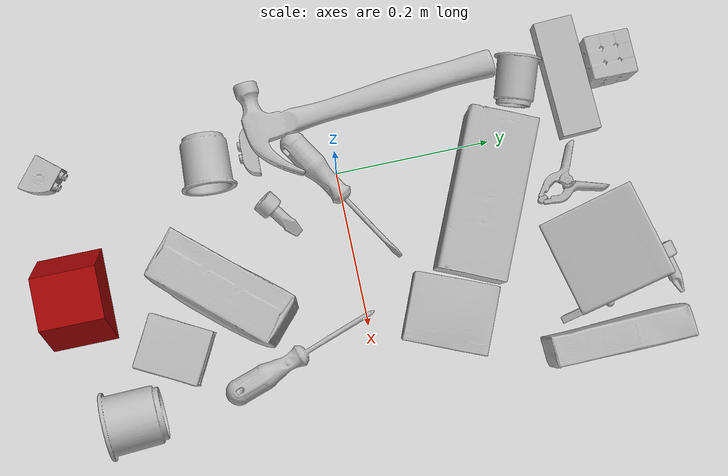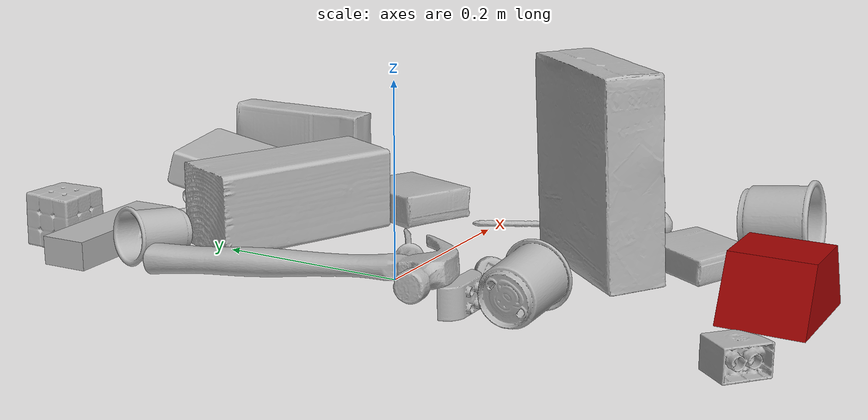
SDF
<sdf version="1.4">
  <world name="default">
    <light name="light1" type="point">
      <pose>0 0 1 0 0 0</pose>
      <diffuse>3 3 3 1</diffuse>
      <specular>3 3 3 1</specular>
    </light>
    <light name="light2" type="point">
      <pose>0 0.5 2 0 0 0</pose>
      <diffuse>1 1 1 1</diffuse>
      <specular>1 1 1 1</specular>
    </light>
    <light name="light3" type="point">
      <pose>0 0.5 2 0 0 0</pose>
      <diffuse>3 3 3 1</diffuse>
      <specular>3 3 3 1</specular>
    </light>
    <scene>
      <ambient>0.7 0.7 0.7</ambient>
    </scene>
    <model name="box21">
      <link name="link_box21">
        <collision name="default">
          <geometry>
            <mesh>
              <uri>model://cracker_box/collision_meshes/collision.obj</uri>
              <scale>1.0 1.0 1.0</scale>
            </mesh>
          </geometry>
          <surface>
            <friction>
              <ode>
                <mu>0.5</mu>
                <mu2>0.5</mu2>
              </ode>
            </friction>
          <contact>
        <ode>
            <max_vel>0</max_vel>
            <min_depth>0.0001</min_depth>
            <kp>1e8</kp>
        </ode>
    </contact></surface>
        </collision>
        <visual name="default">
          <geometry>
            <mesh>
              <uri>model://cracker_box/visual_meshes/visual.dae</uri>
              <scale>1.0 1.0 1.0</scale>
            </mesh>
          </geometry>
        </visual>
        <inertial>
          <mass>1.1849639415740967</mass>
          <pose>0.0009464144241064787 0.0002543424488976598 -0.0017029534792527556 -0.0003162077682631379 -0.011106487737543453 0.002546794536785776</pose>
          <inertia>
            <ixx>0.0030140192</ixx>
            <iyy>0.004976738</iyy>
            <izz>0.007102261</izz>
            <ixy>0</ixy>
            <ixz>0</ixz>
            <iyz>0</iyz>
          </inertia>
        </inertial>
      </link>
      <pose>0.12746518850326538 -0.16144418716430664 0.10730641335248947 -0.042434455381468554 1.529490773063699 -0.7467348907229214</pose>
    </model>
    <model name="box22">
      <link name="link_box22">
        <collision name="default">
          <geometry>
            <mesh>
              <uri>model://rubiks_cube/collision_meshes/collision.obj</uri>
              <scale>1.0 1.0 1.0</scale>
            </mesh>
          </geometry>
          <surface>
            <friction>
              <ode>
                <mu>0.5</mu>
                <mu2>0.5</mu2>
              </ode>
            </friction>
          <contact>
        <ode>
            <max_vel>0</max_vel>
            <min_depth>0.0001</min_depth>
            <kp>1e8</kp>
        </ode>
    </contact></surface>
        </collision>
        <visual name="default">
          <geometry>
            <mesh>
              <uri>model://rubiks_cube/visual_meshes/visual.dae</uri>
              <scale>1.0 1.0 1.0</scale>
            </mesh>
          </geometry>
        </visual>
        <inertial>
          <mass>0.10796652734279633</mass>
          <pose>2.6721041649580002e-05 5.2569666877388954e-05 -7.264316082000732e-06 -0.054672548620525036 -0.09813983330627576 -0.03445544186372042</pose>
          <inertia>
            <ixx>5.965876e-05</ixx>
            <iyy>5.9380527e-05</iyy>
            <izz>6.0153117e-05</izz>
            <ixy>0</ixy>
            <ixz>0</ixz>
            <iyz>0</iyz>
          </inertia>
        </inertial>
      </link>
      <pose>-0.06921596080064774 0.3675774931907654 0.029330071061849594 1.5776107308300094 -0.016682620530204553 0.014935788351436888</pose>
    </model>
    <model name="box23">
      <link name="link_box23">
        <collision name="default">
          <geometry>
            <mesh>
              <uri>model://sugar_box/collision_meshes/collision.obj</uri>
              <scale>1.0 1.0 1.0</scale>
            </mesh>
          </geometry>
          <surface>
            <friction>
              <ode>
                <mu>0.5</mu>
                <mu2>0.5</mu2>
              </ode>
            </friction>
          <contact>
        <ode>
            <max_vel>0</max_vel>
            <min_depth>0.0001</min_depth>
            <kp>1e8</kp>
        </ode>
    </contact></surface>
        </collision>
        <visual name="default">
          <geometry>
            <mesh>
              <uri>model://sugar_box/visual_meshes/visual.dae</uri>
              <scale>1.0 1.0 1.0</scale>
            </mesh>
          </geometry>
        </visual>
        <inertial>
          <mass>0.8519012928009033</mass>
          <pose>0.0010343727190047503 3.8491099985549226e-05 -0.0003636480832938105 -0.00040462606756407727 0.0010506635218583888 0.002615378789044619</pose>
          <inertia>
            <ixx>0.00070980185</ixx>
            <iyy>0.0022942254</iyy>
            <izz>0.0027464617</izz>
            <ixy>0</ixy>
            <ixz>0</ixz>
            <iyz>0</iyz>
          </inertia>
        </inertial>
      </link>
      <pose>0.27697357535362244 0.29877373576164246 0.046450115740299225 1.5710194491135494 -3.9852884144031084e-05 1.5975396929185304</pose>
    </model>
    <model name="cup1">
      <link name="link_cup1">
        <collision name="default">
          <geometry>
            <mesh>
              <uri>model://b_cups/collision_meshes/collision.obj</uri>
              <scale>1.0 1.0 1.0</scale>
            </mesh>
          </geometry>
          <surface>
            <friction>
              <ode>
                <mu>0.5</mu>
                <mu2>0.5</mu2>
              </ode>
            </friction>
          <contact>
        <ode>
            <max_vel>0</max_vel>
            <min_depth>0.0001</min_depth>
            <kp>1e8</kp>
        </ode>
    </contact></surface>
        </collision>
        <visual name="default">
          <geometry>
            <mesh>
              <uri>model://b_cups/visual_meshes/visual.dae</uri>
              <scale>1.0 1.0 1.0</scale>
            </mesh>
          </geometry>
        </visual>
        <inertial>
          <mass>0.025879299268126488</mass>
          <pose>0.0005181999877095222 0.0018058597343042493 -0.0013381816679611802 0.11356295314662153 0.03872538879904025 -0.34569789869984097</pose>
          <inertia>
            <ixx>1.6939814e-05</ixx>
            <iyy>1.6618207e-05</iyy>
            <izz>1.4254532e-05</izz>
            <ixy>0</ixy>
            <ixz>0</ixz>
            <iyz>0</iyz>
          </inertia>
        </inertial>
      </link>
      <pose>-0.06590732932090759 0.24809929728507996 0.027827950194478035 -1.4799830700869123 0.25179244877820034 1.2797537524512366</pose>
    </model>
    <model name="cup2">
      <link name="link_cup2">
        <collision name="default">
          <geometry>
            <mesh>
              <uri>model://g_cups/collision_meshes/collision.obj</uri>
              <scale>1.0 1.0 1.0</scale>
            </mesh>
          </geometry>
          <surface>
            <friction>
              <ode>
                <mu>0.5</mu>
                <mu2>0.5</mu2>
              </ode>
            </friction>
          <contact>
        <ode>
            <max_vel>0</max_vel>
            <min_depth>0.0001</min_depth>
            <kp>1e8</kp>
        </ode>
    </contact></surface>
        </collision>
        <visual name="default">
          <geometry>
            <mesh>
              <uri>model://g_cups/visual_meshes/visual.dae</uri>
              <scale>1.0 1.0 1.0</scale>
            </mesh>
          </geometry>
        </visual>
        <inertial>
          <mass>0.06683293730020523</mass>
          <pose>-0.0007946278783492744 -4.206685844110325e-05 -0.002132937777787447 -0.21382591566164685 -0.31410327542238353 0.3112138520870617</pose>
          <inertia>
            <ixx>7.8009005e-05</ixx>
            <iyy>7.7743636e-05</iyy>
            <izz>8.080389e-05</izz>
            <ixy>0</ixy>
            <ixz>0</ixz>
            <iyz>0</iyz>
          </inertia>
        </inertial>
      </link>
      <pose>0.2548638880252838 -0.30885350704193115 0.039860136806964874 -1.351030264324748 -1.1002915384298237 2.987545777286527</pose>
    </model>
    <model name="box11">
      <link name="link_box11">
        <collision name="default">
          <geometry>
            <mesh>
              <uri>model://wood_block/collision_meshes/collision.obj</uri>
              <scale>1.0 1.0 1.0</scale>
            </mesh>
          </geometry>
          <surface>
            <friction>
              <ode>
                <mu>0.5</mu>
                <mu2>0.5</mu2>
              </ode>
            </friction>
          <contact>
        <ode>
            <max_vel>0</max_vel>
            <min_depth>0.0001</min_depth>
            <kp>1e8</kp>
        </ode>
    </contact></surface>
        </collision>
        <visual name="default">
          <geometry>
            <mesh>
              <uri>model://wood_block/visual_meshes/visual.dae</uri>
              <scale>1.0 1.0 1.0</scale>
            </mesh>
          </geometry>
        </visual>
        <inertial>
          <mass>0.9227498173713684</mass>
          <pose>-5.813315056002466e-06 -0.0005708094104193151 0.0002640858292579651 -0.05221074847543751 -0.005192695234575722 -0.00686137748598008</pose>
          <inertia>
            <ixx>0.001234779</ixx>
            <iyy>0.0039006667</iyy>
            <izz>0.0038860766</izz>
            <ixy>0</ixy>
            <ixz>0</ixz>
            <iyz>0</iyz>
          </inertia>
        </inertial>
      </link>
      <pose>0.07192722707986832 0.17661812901496887 0.045616514980793 3.1414477612716545 -0.0059979840262404495 2.7241397865905843</pose>
    </model>
    <model name="box12">
      <link name="link_box12">
        <collision name="default">
          <geometry>
            <mesh>
              <uri>model://pudding_box/collision_meshes/collision.obj</uri>
              <scale>1.0 1.0 1.0</scale>
            </mesh>
          </geometry>
          <surface>
            <friction>
              <ode>
                <mu>0.5</mu>
                <mu2>0.5</mu2>
              </ode>
            </friction>
          <contact>
        <ode>
            <max_vel>0</max_vel>
            <min_depth>0.0001</min_depth>
            <kp>1e8</kp>
        </ode>
    </contact></surface>
        </collision>
        <visual name="default">
          <geometry>
            <mesh>
              <uri>model://pudding_box/visual_meshes/visual.dae</uri>
              <scale>1.0 1.0 1.0</scale>
            </mesh>
          </geometry>
        </visual>
        <inertial>
          <mass>0.23326139152050018</mass>
          <pose>0.0004894821904599667 0.0008067885646596551 -0.0005188827635720372 0.0052131032034861725 -0.006603797335681708 0.02007982515858456</pose>
          <inertia>
            <ixx>0.00026369</ixx>
            <iyy>0.00017741251</iyy>
            <izz>0.00038940719</izz>
            <ixy>0</ixy>
            <ixz>0</ixz>
            <iyz>0</iyz>
          </inertia>
        </inertial>
      </link>
      <pose>0.20667605102062225 0.10452853888273239 0.01972581073641777 0.0223486120536172 -0.011391695944024428 2.743293064405907</pose>
    </model>
    <model name="box13">
      <link name="link_box13">
        <collision name="default">
          <geometry>
            <mesh>
              <uri>model://gelatin_box/collision_meshes/collision.obj</uri>
              <scale>1.0 1.0 1.0</scale>
            </mesh>
          </geometry>
          <surface>
            <friction>
              <ode>
                <mu>0.5</mu>
                <mu2>0.5</mu2>
              </ode>
            </friction>
          <contact>
        <ode>
            <max_vel>0</max_vel>
            <min_depth>0.0001</min_depth>
            <kp>1e8</kp>
        </ode>
    </contact></surface>
        </collision>
        <visual name="default">
          <geometry>
            <mesh>
              <uri>model://gelatin_box/visual_meshes/visual.dae</uri>
              <scale>1.0 1.0 1.0</scale>
            </mesh>
          </geometry>
        </visual>
        <inertial>
          <mass>0.0997389405965805</mass>
          <pose>0.0004319618456065655 0.00011156871187267825 -0.0003640321083366871 -0.001050372080915675 -0.004755817759010177 0.0164405576084854</pose>
          <inertia>
            <ixx>7.040755e-05</ixx>
            <iyy>5.0291743e-05</iyy>
            <izz>0.000107175976</izz>
            <ixy>0</ixy>
            <ixz>0</ixz>
            <iyz>0</iyz>
          </inertia>
        </inertial>
      </link>
      <pose>0.1793106496334076 -0.2469397932291031 0.014580640010535717 -3.1258657245426 -0.025719247105722202 -0.48333714687922125</pose>
    </model>
    <model name="box14">
      <link name="link_box14">
        <collision name="default">
          <geometry>
            <mesh>
              <uri>model://jenga/collision_meshes/collision.obj</uri>
              <scale>1.0 1.0 1.0</scale>
            </mesh>
          </geometry>
          <surface>
            <friction>
              <ode>
                <mu>0.5</mu>
                <mu2>0.5</mu2>
              </ode>
            </friction>
          <contact>
        <ode>
            <max_vel>0</max_vel>
            <min_depth>0.0001</min_depth>
            <kp>1e8</kp>
        </ode>
    </contact></surface>
        </collision>
        <visual name="default">
          <geometry>
            <mesh>
              <uri>model://jenga/visual_meshes/visual.dae</uri>
              <scale>1.0 1.0 1.0</scale>
            </mesh>
          </geometry>
        </visual>
        <inertial>
          <mass>0.23366476595401764</mass>
          <pose>-2.502855807051674e-07 -0.0001025000965455547 -4.092339804628864e-05 0.0 -7.34215461761844e-07 0.0</pose>
          <inertia>
            <ixx>6.466071e-05</ixx>
            <iyy>0.0004381392</iyy>
            <izz>0.00046775083</izz>
            <ixy>0</ixy>
            <ixz>0</ixz>
            <iyz>0</iyz>
          </inertia>
        </inertial>
      </link>
      <pose>-0.059039387851953506 0.31389909982681274 0.014999999664723873 2.3854744377606175e-08 5.0477670560132094e-09 -3.1012914535629026</pose>
    </model>
    <model name="cup15">
      <link name="link_cup15">
        <collision name="default">
          <geometry>
            <mesh>
              <uri>model://d_cups/collision_meshes/collision.obj</uri>
              <scale>1.0 1.0 1.0</scale>
            </mesh>
          </geometry>
          <surface>
            <friction>
              <ode>
                <mu>0.5</mu>
                <mu2>0.5</mu2>
              </ode>
            </friction>
          <contact>
        <ode>
            <max_vel>0</max_vel>
            <min_depth>0.0001</min_depth>
            <kp>1e8</kp>
        </ode>
    </contact></surface>
        </collision>
        <visual name="default">
          <geometry>
            <mesh>
              <uri>model://d_cups/visual_meshes/visual.dae</uri>
              <scale>1.0 1.0 1.0</scale>
            </mesh>
          </geometry>
        </visual>
        <inertial>
          <mass>0.05354860797524452</mass>
          <pose>0.000806806143373251 0.001911740517243743 -0.002266649389639497 0.240133395025133 -0.24708811164710584 0.5942101592185234</pose>
          <inertia>
            <ixx>4.4832785e-05</ixx>
            <iyy>4.470303e-05</iyy>
            <izz>4.0581297e-05</izz>
            <ixy>0</ixy>
            <ixz>0</ixz>
            <iyz>0</iyz>
          </inertia>
        </inertial>
      </link>
      <pose>-0.043067339807748795 -0.15946906805038452 0.03232084959745407 1.4769961287379472 -0.056838864781507244 1.5355469646980155</pose>
    </model>
    <model name="toy1">
      <link name="link_toy1">
        <collision name="default">
          <geometry>
            <mesh>
              <uri>model://d_toy_airplane/collision_meshes/collision.obj</uri>
              <scale>1.0 1.0 1.0</scale>
            </mesh>
          </geometry>
          <surface>
            <friction>
              <ode>
                <mu>0.5</mu>
                <mu2>0.5</mu2>
              </ode>
            </friction>
          <contact>
        <ode>
            <max_vel>0</max_vel>
            <min_depth>0.0001</min_depth>
            <kp>1e8</kp>
        </ode>
    </contact></surface>
        </collision>
        <visual name="default">
          <geometry>
            <mesh>
              <uri>model://d_toy_airplane/visual_meshes/visual.dae</uri>
              <scale>1.0 1.0 1.0</scale>
            </mesh>
          </geometry>
        </visual>
        <inertial>
          <mass>0.01055214088410139</mass>
          <pose>9.410294296685606e-05 -5.809328649775125e-05 -0.011728094890713692 0.00026701540047293157 0.004678982739479609 0.5194739606880012</pose>
          <inertia>
            <ixx>3.1633276e-06</ixx>
            <iyy>3.1657132e-06</iyy>
            <izz>9.55029e-07</izz>
            <ixy>0</ixy>
            <ixz>0</ixz>
            <iyz>0</iyz>
          </inertia>
        </inertial>
      </link>
      <pose>0.20857664942741394 0.39187949895858765 0.014748853631317616 1.5858469319061166 -0.22423288933570318 1.7973373535150223</pose>
    </model>
    <model name="toy2">
      <link name="link_toy2">
        <collision name="default">
          <geometry>
            <mesh>
              <uri>model://d_lego_duplo/collision_meshes/collision.obj</uri>
              <scale>1.0 1.0 1.0</scale>
            </mesh>
          </geometry>
          <surface>
            <friction>
              <ode>
                <mu>0.5</mu>
                <mu2>0.5</mu2>
              </ode>
            </friction>
          <contact>
        <ode>
            <max_vel>0</max_vel>
            <min_depth>0.0001</min_depth>
            <kp>1e8</kp>
        </ode>
    </contact></surface>
        </collision>
        <visual name="default">
          <geometry>
            <mesh>
              <uri>model://d_lego_duplo/visual_meshes/visual.dae</uri>
              <scale>1.0 1.0 1.0</scale>
            </mesh>
          </geometry>
        </visual>
        <inertial>
          <mass>0.039816875010728836</mass>
          <pose>0.0028305640444159508 0.00016366131603717804 0.000858980929479003 0.08010950238605453 -0.3835521959243733 0.0010296761363168562</pose>
          <inertia>
            <ixx>7.70796e-06</ixx>
            <iyy>1.0939688e-05</iyy>
            <izz>1.0549791e-05</izz>
            <ixy>0</ixy>
            <ixz>0</ixz>
            <iyz>0</iyz>
          </inertia>
        </inertial>
      </link>
      <pose>-0.06674033403396606 -0.3681388199329376 0.016249647364020348 1.5793369085701734 -0.01312000234708891 2.444729698728874</pose>
    </model>
    <model name="toy3">
      <link name="link_toy3">
        <collision name="default">
          <geometry>
            <mesh>
              <uri>model://nine_hole_peg_test/collision_meshes/collision.obj</uri>
              <scale>1.0 1.0 1.0</scale>
            </mesh>
          </geometry>
          <surface>
            <friction>
              <ode>
                <mu>0.5</mu>
                <mu2>0.5</mu2>
              </ode>
            </friction>
          <contact>
        <ode>
            <max_vel>0</max_vel>
            <min_depth>0.0001</min_depth>
            <kp>1e8</kp>
        </ode>
    </contact></surface>
        </collision>
        <visual name="default">
          <geometry>
            <mesh>
              <uri>model://nine_hole_peg_test/visual_meshes/visual.dae</uri>
              <scale>1.0 1.0 1.0</scale>
            </mesh>
          </geometry>
        </visual>
        <inertial>
          <mass>0.7048692107200623</mass>
          <pose>-0.0046173869632184505 -0.009647614322602749 2.6460689696250483e-05 -0.0014666794682547425 0.0007194190753660851 -0.6342416580414534</pose>
          <inertia>
            <ixx>0.0011021789</ixx>
            <iyy>0.0010290928</iyy>
            <izz>0.0019313421</izz>
            <ixy>0</ixy>
            <ixz>0</ixz>
            <iyz>0</iyz>
          </inertia>
        </inertial>
      </link>
      <pose>0.17467264831066132 0.3042267858982086 0.0325806699693203 -2.8968527692933876 -0.009342193502729133 0.23513179505912105</pose>
    </model>
    <model name="toy4">
      <link name="link_toy4">
        <collision name="default">
          <geometry>
            <mesh>
              <uri>model://a_lego_duplo/collision_meshes/collision.obj</uri>
              <scale>1.0 1.0 1.0</scale>
            </mesh>
          </geometry>
          <surface>
            <friction>
              <ode>
                <mu>0.5</mu>
                <mu2>0.5</mu2>
              </ode>
            </friction>
          <contact>
        <ode>
            <max_vel>0</max_vel>
            <min_depth>0.0001</min_depth>
            <kp>1e8</kp>
        </ode>
    </contact></surface>
        </collision>
        <visual name="default">
          <geometry>
            <mesh>
              <uri>model://a_lego_duplo/visual_meshes/visual.dae</uri>
              <scale>1.0 1.0 1.0</scale>
            </mesh>
          </geometry>
        </visual>
        <inertial>
          <mass>0.021006127819418907</mass>
          <pose>-0.00011337678006384522 0.00018517556600272655 0.0003692602913361043 -0.014116980161978756 -0.00012565077681184441 6.142327078429463e-05</pose>
          <inertia>
            <ixx>2.6931523e-06</ixx>
            <iyy>6.033251e-06</iyy>
            <izz>7.473524e-06</izz>
            <ixy>0</ixy>
            <ixz>0</ixz>
            <iyz>0</iyz>
          </inertia>
        </inertial>
      </link>
      <pose>-0.04921689257025719 -0.10559151321649551 0.016490668058395386 -1.5487072153760937 0.009126925701462178 3.116823515411303</pose>
    </model>
    <model name="toy5">
      <link name="link_toy5">
        <collision name="default">
          <geometry>
            <mesh>
              <uri>model://e_toy_airplane/collision_meshes/collision.obj</uri>
              <scale>1.0 1.0 1.0</scale>
            </mesh>
          </geometry>
          <surface>
            <friction>
              <ode>
                <mu>0.5</mu>
                <mu2>0.5</mu2>
              </ode>
            </friction>
          <contact>
        <ode>
            <max_vel>0</max_vel>
            <min_depth>0.0001</min_depth>
            <kp>1e8</kp>
        </ode>
    </contact></surface>
        </collision>
        <visual name="default">
          <geometry>
            <mesh>
              <uri>model://e_toy_airplane/visual_meshes/visual.dae</uri>
              <scale>1.0 1.0 1.0</scale>
            </mesh>
          </geometry>
        </visual>
        <inertial>
          <mass>0.02451101876795292</mass>
          <pose>0.00011740468471543863 -2.248291639261879e-05 -0.011187203228473663 0.00551850103187323 0.009228285956806933 0.150416364683818</pose>
          <inertia>
            <ixx>7.481042e-06</ixx>
            <iyy>7.4045165e-06</iyy>
            <izz>2.2483475e-06</izz>
            <ixy>0</ixy>
            <ixz>0</ixz>
            <iyz>0</iyz>
          </inertia>
        </inertial>
      </link>
      <pose>0.041288889944553375 -0.08093246072530746 0.010869874618947506 3.0035522709399882 1.3103064540568932 -2.638039893204844</pose>
    </model>
    <model name="toy6">
      <link name="link_toy6">
        <collision name="default">
          <geometry>
            <mesh>
              <uri>model://prism/collision_meshes/collision.obj</uri>
              <scale>1.0 1.0 1.0</scale>
            </mesh>
          </geometry>
          <surface>
            <friction>
              <ode>
                <mu>0.5</mu>
                <mu2>0.5</mu2>
              </ode>
            </friction>
          <contact>
        <ode>
            <max_vel>0</max_vel>
            <min_depth>0.0001</min_depth>
            <kp>1e8</kp>
        </ode>
    </contact></surface>
        </collision>
        <visual name="default">
          <geometry>
            <mesh>
              <uri>model://prism/visual_meshes/visual.dae</uri>
              <scale>1.0 1.0 1.0</scale>
            </mesh>
          </geometry>
        </visual>
        <inertial>
          <mass>0.639074981212616</mass>
          <pose>-9.85359656624496e-05 -4.96157269935793e-07 -0.003386910306289792 0.0 0.006559180766136186 0.0</pose>
          <inertia>
            <ixx>0.0005767573</ixx>
            <iyy>0.0006970186</iyy>
            <izz>0.0008537644</izz>
            <ixy>0</ixy>
            <ixz>0</ixz>
            <iyz>0</iyz>
          </inertia>
        </inertial>
      </link>
      <pose>0.09111391752958298 -0.35799309611320496 0.032169993966817856 -3.123263021888922e-08 -2.9337266776679015e-08 3.141553868042737</pose>
    </model>
    <model name="hardware1">
      <link name="link_hardware1">
        <collision name="default">
          <geometry>
            <mesh>
              <uri>model://medium_clamp/collision_meshes/collision.obj</uri>
              <scale>1.0 1.0 1.0</scale>
            </mesh>
          </geometry>
          <surface>
            <friction>
              <ode>
                <mu>0.5</mu>
                <mu2>0.5</mu2>
              </ode>
            </friction>
          <contact>
        <ode>
            <max_vel>0</max_vel>
            <min_depth>0.0001</min_depth>
            <kp>1e8</kp>
        </ode>
    </contact></surface>
        </collision>
        <visual name="default">
          <geometry>
            <mesh>
              <uri>model://medium_clamp/visual_meshes/visual.dae</uri>
              <scale>1.0 1.0 1.0</scale>
            </mesh>
          </geometry>
        </visual>
        <inertial>
          <mass>0.01437164656817913</mass>
          <pose>0.005390993785113096 0.00039532355731353164 -0.0001222158025484532 -0.001226922255807767 0.0025845058861846287 0.038207728721457376</pose>
          <inertia>
            <ixx>3.9153533e-06</ixx>
            <iyy>5.697947e-06</iyy>
            <izz>8.776544e-06</izz>
            <ixy>0</ixy>
            <ixz>0</ixz>
            <iyz>0</iyz>
          </inertia>
        </inertial>
      </link>
      <pose>0.07110664993524551 0.28704819083213806 0.013534077443182468 0.07683207992110165 0.08544270354840976 -1.134194523757454</pose>
    </model>
    <model name="hardware2">
      <link name="link_hardware2">
        <collision name="default">
          <geometry>
            <mesh>
              <uri>model://hammer/collision_meshes/collision.obj</uri>
              <scale>1.0 1.0 1.0</scale>
            </mesh>
          </geometry>
          <surface>
            <friction>
              <ode>
                <mu>0.5</mu>
                <mu2>0.5</mu2>
              </ode>
            </friction>
          <contact>
        <ode>
            <max_vel>0</max_vel>
            <min_depth>0.0001</min_depth>
            <kp>1e8</kp>
        </ode>
    </contact></surface>
        </collision>
        <visual name="default">
          <geometry>
            <mesh>
              <uri>model://hammer/visual_meshes/visual.dae</uri>
              <scale>1.0 1.0 1.0</scale>
            </mesh>
          </geometry>
        </visual>
        <inertial>
          <mass>0.29233166575431824</mass>
          <pose>0.009415771812200546 -0.011892357841134071 -0.0001235063245985657 0.02315535385536088 -0.004792164028838156 -0.01276032390705471</pose>
          <inertia>
            <ixx>0.0001252207</ixx>
            <iyy>0.003393116</iyy>
            <izz>0.0034903311</izz>
            <ixy>0</ixy>
            <ixz>0</ixz>
            <iyz>0</iyz>
          </inertia>
        </inertial>
      </link>
      <pose>-0.07073049992322922 0.05019809678196907 0.031133169308304787 -0.0447899524208325 -0.09185590847465726 -1.4768994374757158</pose>
    </model>
    <model name="hardware3">
      <link name="link_hardware3">
        <collision name="default">
          <geometry>
            <mesh>
              <uri>model://phillips_screwdriver/collision_meshes/collision.obj</uri>
              <scale>1.0 1.0 1.0</scale>
            </mesh>
          </geometry>
          <surface>
            <friction>
              <ode>
                <mu>0.5</mu>
                <mu2>0.5</mu2>
              </ode>
            </friction>
          <contact>
        <ode>
            <max_vel>0</max_vel>
            <min_depth>0.0001</min_depth>
            <kp>1e8</kp>
        </ode>
    </contact></surface>
        </collision>
        <visual name="default">
          <geometry>
            <mesh>
              <uri>model://phillips_screwdriver/visual_meshes/visual.dae</uri>
              <scale>1.0 1.0 1.0</scale>
            </mesh>
          </geometry>
        </visual>
        <inertial>
          <mass>0.11685379594564438</mass>
          <pose>-0.04777182638645172 0.0010362302418798208 -0.0004555549821816385 -0.15721778382646787 0.005850995328295584 -0.002156740385256481</pose>
          <inertia>
            <ixx>1.3729124e-05</ixx>
            <iyy>0.00017213916</iyy>
            <izz>0.00017228544</izz>
            <ixy>0</ixy>
            <ixz>0</ixz>
            <iyz>0</iyz>
          </inertia>
        </inertial>
      </link>
      <pose>0.21901996433734894 -0.09373369067907333 0.015485493466258049 -1.694554433001787 0.04543946559272041 1.9061640261119877</pose>
    </model>
    <model name="hardware4">
      <link name="link_hardware4">
        <collision name="default">
          <geometry>
            <mesh>
              <uri>model://flat_screwdriver/collision_meshes/collision.obj</uri>
              <scale>1.0 1.0 1.0</scale>
            </mesh>
          </geometry>
          <surface>
            <friction>
              <ode>
                <mu>0.5</mu>
                <mu2>0.5</mu2>
              </ode>
            </friction>
          <contact>
        <ode>
            <max_vel>0</max_vel>
            <min_depth>0.0001</min_depth>
            <kp>1e8</kp>
        </ode>
    </contact></surface>
        </collision>
        <visual name="default">
          <geometry>
            <mesh>
              <uri>model://flat_screwdriver/visual_meshes/visual.dae</uri>
              <scale>1.0 1.0 1.0</scale>
            </mesh>
          </geometry>
        </visual>
        <inertial>
          <mass>0.10915977507829666</mass>
          <pose>-0.0489187091588974 -0.0006576799787580967 -0.000614091579336673 -0.5614402636475724 -0.003233725963840683 0.006982283174401888</pose>
          <inertia>
            <ixx>1.2897148e-05</ixx>
            <iyy>0.0001637322</iyy>
            <izz>0.00016365637</izz>
            <ixy>0</ixy>
            <ixz>0</ixz>
            <iyz>0</iyz>
          </inertia>
        </inertial>
      </link>
      <pose>0.02972244657576084 0.0006055496633052826 0.015812169760465622 0.7728831732041278 0.04724493228032511 0.5570683059628037</pose>
    </model>
  <physics type="ode">
      <max_contacts>50</max_contacts>
      <ode>
        <solver>
          <type>quick</type>
          <iters>75</iters>
        </solver>
        <constraints>
          <contact_max_correcting_vel>0</contact_max_correcting_vel>
          <contact_surface_layer>0</contact_surface_layer>
        </constraints>
      </ode>
    </physics></world>
</sdf>
